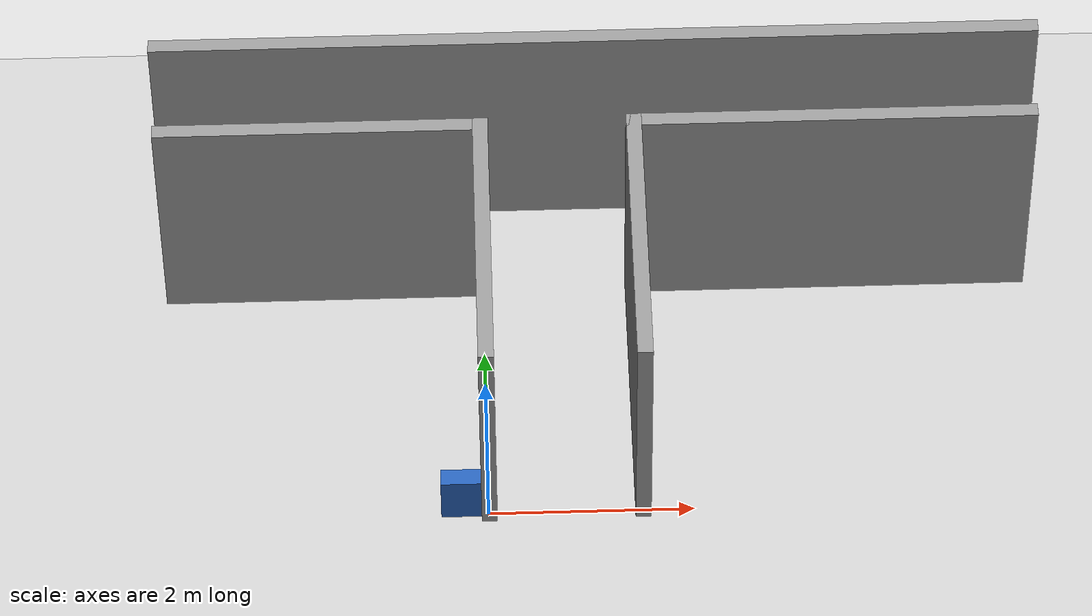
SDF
<sdf version="1.6">
 <world name="default">
  <light name="sun" type="directional">
   <pose>0 0 10 0 -0 0</pose>
   <diffuse>0.8 0.8 0.8 1</diffuse>
   <specular>0.2 0.2 0.2 1</specular>
   <attenuation>
    <range>1000</range>
    <constant>0.9</constant>
    <linear>0.01</linear>
    <quadratic>0.001</quadratic>
   </attenuation>
   <direction>-0.5 0.1 -0.9</direction>
  </light>
  <model name="ground_plane">
   <static>1</static>
   <link name="link">
    <collision name="collision">
     <geometry><plane><normal>0 0 1</normal><size>100 100</size></plane></geometry>
     <surface><friction><ode><mu>100</mu><mu2>50</mu2></ode></friction></surface>
    </collision>
    <visual name="visual">
     <cast_shadows>0</cast_shadows>
     <geometry><plane><normal>0 0 1</normal><size>100 100</size></plane></geometry>
     <material>
      <script><uri>file://media/materials/scripts/gazebo.material</uri><name>Gazebo/Grey</name></script>
     </material>
    </visual>
   </link>
  </model>
  <gravity>0 0 -9.8</gravity>
  <magnetic_field>6e-06 2.3e-05 -4.2e-05</magnetic_field>
  <atmosphere type="adiabatic"/>
  <physics name="default_physics" default="0" type="ode">
   <max_step_size>0.001</max_step_size>
   <real_time_factor>1</real_time_factor>
   <real_time_update_rate>1000</real_time_update_rate>
  </physics>
  <scene><ambient>0.4 0.4 0.4 1</ambient><background>0.7 0.7 0.7 1</background><shadows>1</shadows></scene>
  <audio><device>default</device></audio>
  <spherical_coordinates>
   <surface_model>EARTH_WGS84</surface_model>
   <latitude_deg>0</latitude_deg>
   <longitude_deg>0</longitude_deg>
   <elevation>0</elevation>
   <heading_deg>0</heading_deg>
  </spherical_coordinates>
  <model name="libopen_space_final_T2B_103_85">
   <static>1</static>
   <pose>-0.225000 0.075000 0.000000 0.000000 0.000000 0.000000</pose>
   <link name="link">
    <inertial>
     <mass>1</mass>
     <inertia><ixx>0.145833</ixx><ixy>0</ixy><ixz>0</ixz><iyy>0.145833</iyy><iyz>0</iyz><izz>0.125</izz></inertia>
    </inertial>
    <collision name="collision"><geometry><box><size>0.46 0.18 1</size></box></geometry></collision>
    <visual name="visual">
     <geometry><box><size>0.46 0.18 1</size></box></geometry>
     <material>
      <ambient>0.152000 0.379000 0.720000 1</ambient>
      <diffuse>0.152000 0.379000 0.720000 1</diffuse>
     </material>
     <material>
      <script><name>Gazebo/Grey</name><uri>file://media/materials/scripts/gazebo.material</uri></script>
     </material>
    </visual>
   </link>
   <plugin name="libopen_space_final_T2B_103_85" filename="libopen_space_final_T2B_103_85.so"/>
  </model>
  <model name="Untitled_0">
   <pose>1.14821 1.97875 0 0 -0 0</pose>
   <link name="Wall_10">
    <collision name="Wall_10_Collision">
     <geometry><box><size>4 0.15 2.5</size></box></geometry>
     <pose>0 0 1.25 0 -0 0</pose>
    </collision>
    <visual name="Wall_10_Visual">
     <pose>0 0 1.25 0 -0 0</pose>
     <geometry><box><size>4 0.15 2.5</size></box></geometry>
     <material>
      <script><uri>file://media/materials/scripts/gazebo.material</uri><name>Gazebo/Grey</name></script>
      <ambient>1 1 1 1</ambient>
     </material>
     <meta><layer>0</layer></meta>
    </visual>
    <pose>2.27679 0.871253 0 0 -0 0</pose>
   </link>
   <link name="Wall_12">
    <collision name="Wall_12_Collision">
     <geometry><box><size>3.25 0.15 2.5</size></box></geometry>
     <pose>0 0 1.25 0 -0 0</pose>
    </collision>
    <visual name="Wall_12_Visual">
     <pose>0 0 1.25 0 -0 0</pose>
     <geometry><box><size>3.25 0.15 2.5</size></box></geometry>
     <material>
      <script><uri>file://media/materials/scripts/gazebo.material</uri><name>Gazebo/Grey</name></script>
      <ambient>1 1 1 1</ambient>
     </material>
     <meta><layer>0</layer></meta>
    </visual>
    <pose>-2.68821 0.861253 0 0 -0 3.14159</pose>
   </link>
   <link name="Wall_14">
    <collision name="Wall_14_Collision">
     <geometry><box><size>8.75 0.15 2.5</size></box></geometry>
     <pose>0 0 1.25 0 -0 0</pose>
    </collision>
    <visual name="Wall_14_Visual">
     <pose>0 0 1.25 0 -0 0</pose>
     <geometry><box><size>8.75 0.15 2.5</size></box></geometry>
     <material>
      <script><uri>file://media/materials/scripts/gazebo.material</uri><name>Gazebo/Grey</name></script>
      <ambient>1 1 1 1</ambient>
     </material>
     <meta><layer>0</layer></meta>
    </visual>
    <pose>0 1.98875 0 0 -0 0</pose>
   </link>
   <link name="Wall_6">
    <collision name="Wall_6_Collision">
     <geometry><box><size>3 0.15 2.5</size></box></geometry>
     <pose>0 0 1.25 0 -0 0</pose>
    </collision>
    <visual name="Wall_6_Visual">
     <pose>0 0 1.25 0 -0 0</pose>
     <geometry><box><size>3 0.15 2.5</size></box></geometry>
     <material>
      <script><uri>file://media/materials/scripts/gazebo.material</uri><name>Gazebo/Grey</name></script>
      <ambient>1 1 1 1</ambient>
     </material>
     <meta><layer>0</layer></meta>
    </visual>
    <pose>-1.13821 -0.563747 0 0 -0 1.5708</pose>
   </link>
   <link name="Wall_8">
    <collision name="Wall_8_Collision">
     <geometry><box><size>3 0.15 2.5</size></box></geometry>
     <pose>0 0 1.25 0 -0 0</pose>
    </collision>
    <visual name="Wall_8_Visual">
     <pose>0 0 1.25 0 -0 0</pose>
     <geometry><box><size>3 0.15 2.5</size></box></geometry>
     <material>
      <script><uri>file://media/materials/scripts/gazebo.material</uri><name>Gazebo/Grey</name></script>
      <ambient>1 1 1 1</ambient>
     </material>
     <meta><layer>0</layer></meta>
    </visual>
    <pose>0.351792 -0.553747 0 0 -0 1.5708</pose>
   </link>
   <static>1</static>
  </model>
 </world>
</sdf>
